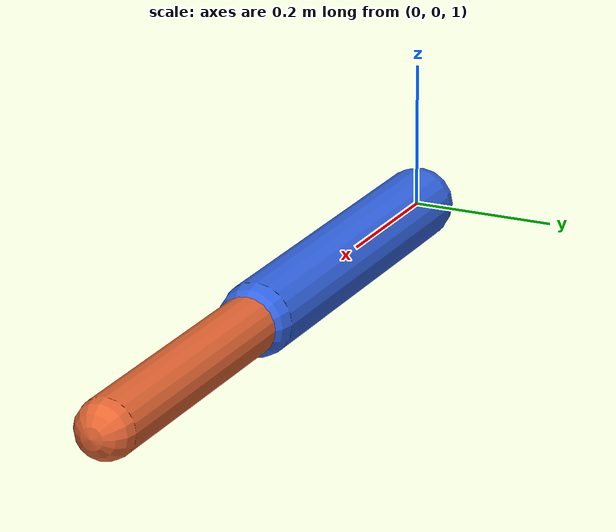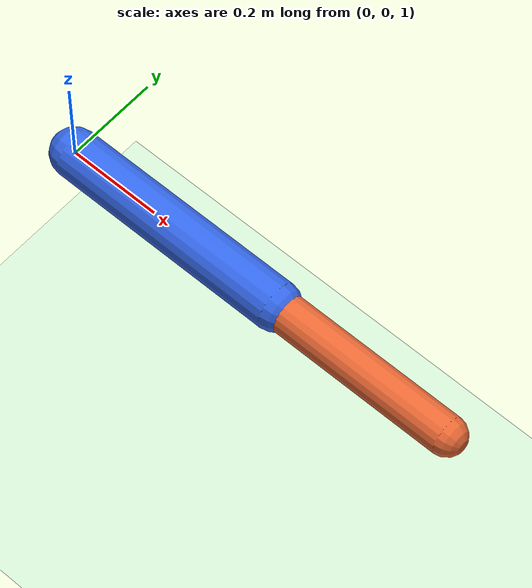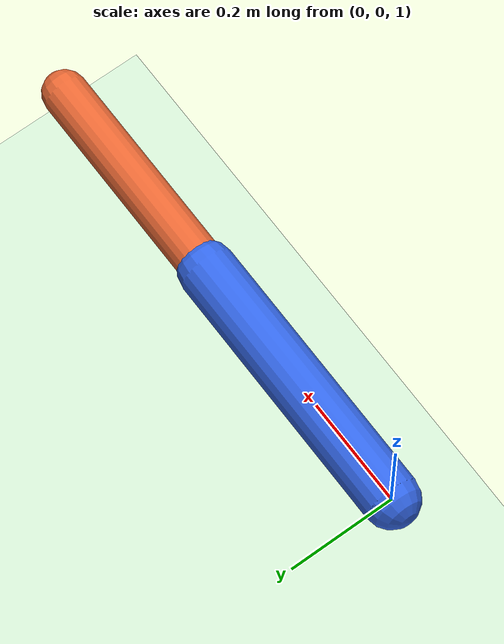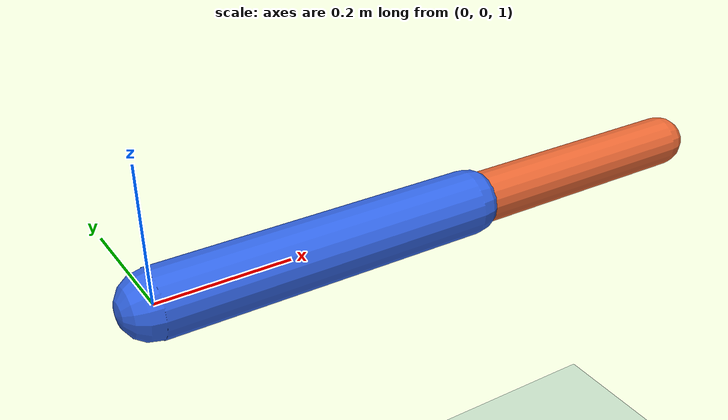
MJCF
<mujoco model="two_link_arm">
  <option gravity="0 0 -9.81" timestep="0.002"/>

  <worldbody>
    <light pos="0 0 3"/>
    <geom name="floor" type="plane" size="3 3 0.1" rgba="0.8 0.9 0.8 1"/>

    <body name="upper_arm" pos="0 0 1">
      <joint name="shoulder" type="hinge" axis="0 1 0"/>
      <geom type="capsule" fromto="0 0 0  0.5 0 0" size="0.05" rgba="0.2 0.4 0.9 1"/>

      <body name="forearm" pos="0.5 0 0">
        <joint name="elbow" type="hinge" axis="0 1 0"/>
        <geom type="capsule" fromto="0 0 0  0.4 0 0" size="0.04" rgba="0.9 0.4 0.2 1"/>
      </body>
    </body>
  </worldbody>

  <actuator>
    <position name="shoulder_pos" joint="shoulder" kp="100"/>
    <position name="elbow_pos"    joint="elbow"    kp="100"/>
  </actuator>
</mujoco>
